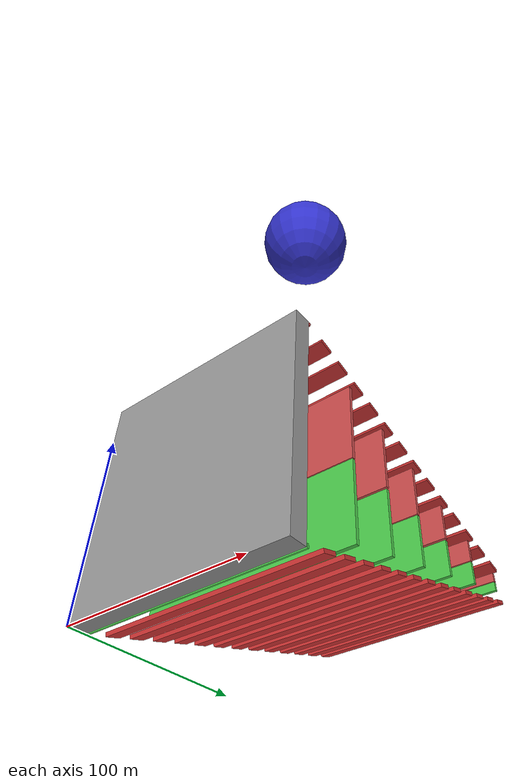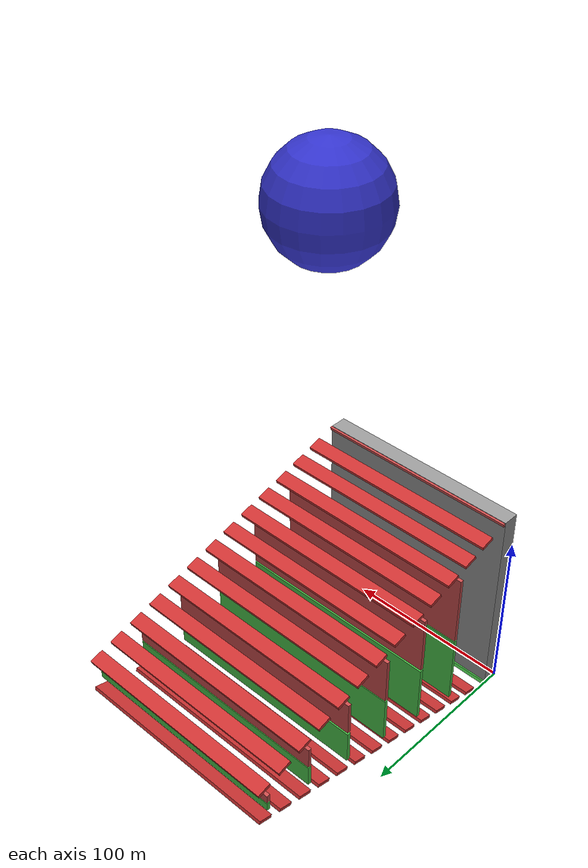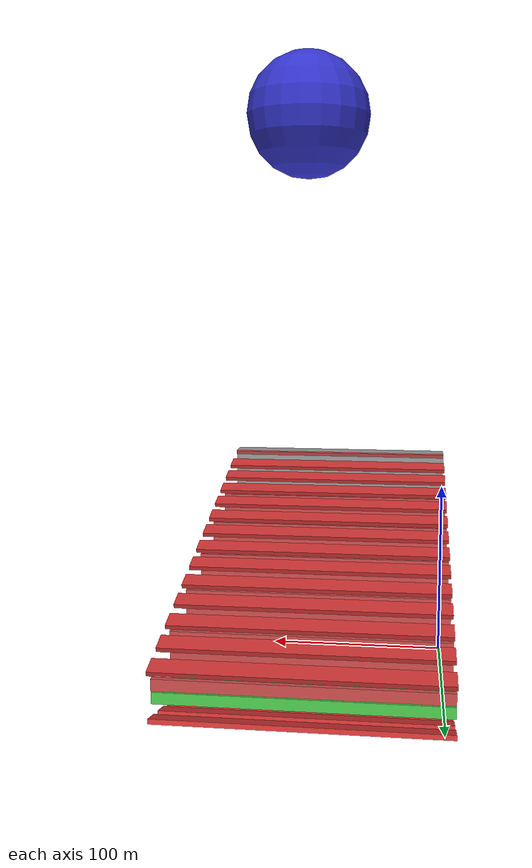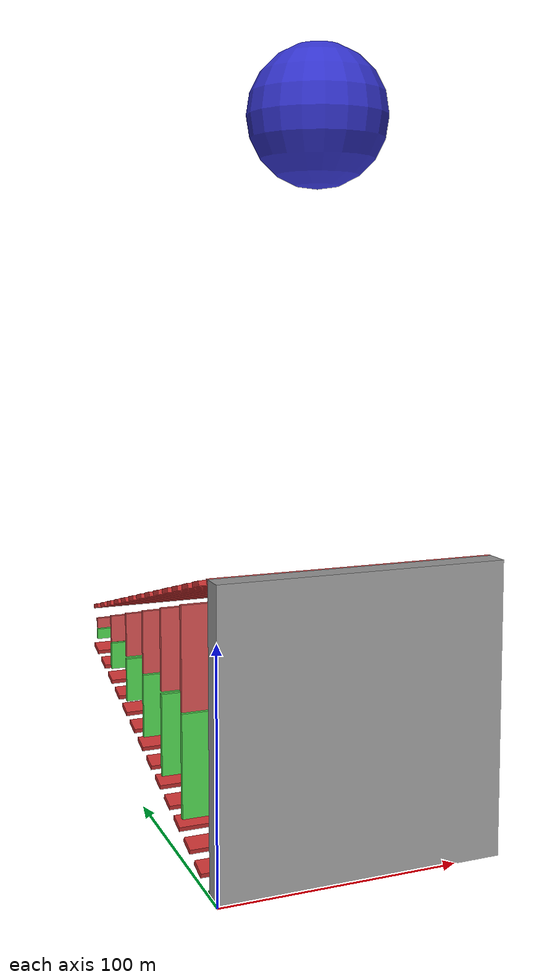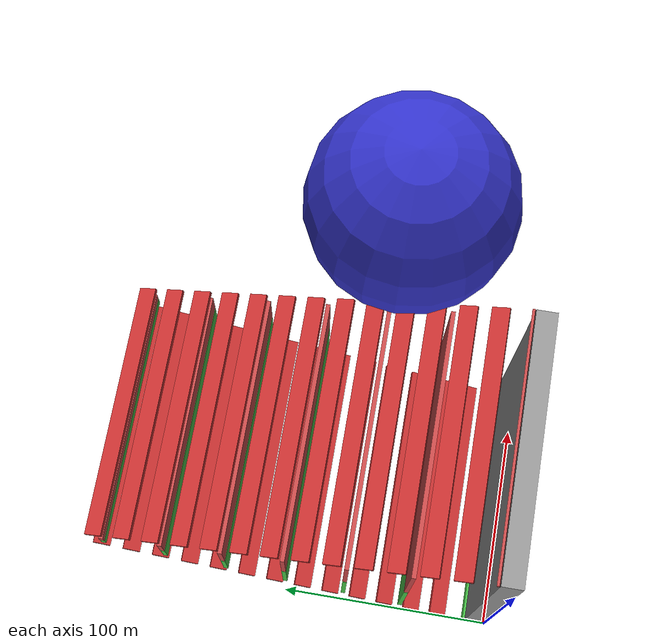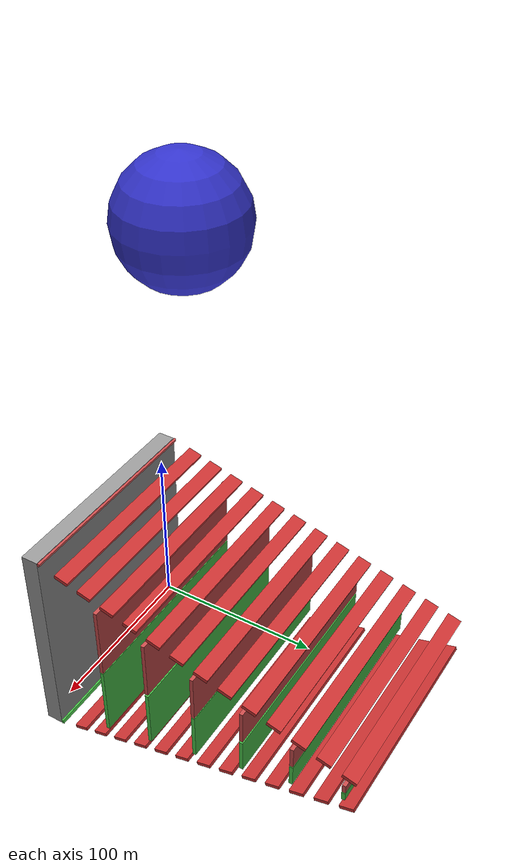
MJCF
<?xml version="1.0" ?>
<mujoco>
  <worldbody>
    <body name="falling_ball" pos="70 70 300">
      <geom density="500" rgba="0.2 0.2 0.8 1" size="30" type="sphere"/>
      <joint name="ball_joint" type="free"/>
    </body>
    <body name="base_box" pos="60 4.77 60.877">
      <geom density="1" rgba="0.6 0.6 0.6 1" size="60 4.77 60.877" type="box"/>
      <body euler="-15.642 0 0" name="small_box_1" pos="0 5.6 60">
        <geom rgba="0.8 0.3 0.3 1" size="60 0.6 1" type="box"/>
        <joint axis="1 0 0" damping="50000" name="joint_0" pos="0 0 0" range="-90 90" springref="0" stiffness="50000" type="hinge"/>
        <body name="blockl_0" pos="0 14 0">
          <geom density="5000" rgba="0.8 0.2 0.2 1" size="60 4 1" type="box"/>
          <site name="sitel_0" pos="0 0 0" size="0.1"/>
          <joint actuatorfrclimited="false" axis="1 0 0" damping="50000" name="jointl_0" pos="0 0 0" range="-180 180" springref="0" stiffness="50000" type="hinge"/>
          <body name="blockl_1" pos="0 14 0">
            <geom density="5000" rgba="0.8 0.2 0.2 1" size="60 4 1" type="box"/>
            <site name="sitel_1" pos="0 0 0" size="0.1"/>
            <joint actuatorfrclimited="false" axis="1 0 0" damping="50000" name="jointl_1" pos="0 0 0" range="-180 180" springref="0" stiffness="50000" type="hinge"/>
            <body name="blockl_2" pos="0 14 0">
              <geom density="5000" rgba="0.8 0.2 0.2 1" size="60 4 1" type="box"/>
              <site name="sitel_2" pos="0 0 0" size="0.1"/>
              <joint actuatorfrclimited="false" axis="1 0 0" damping="50000" name="jointl_2" pos="0 0 0" range="-180 180" springref="0" stiffness="50000" type="hinge"/>
              <body euler="15.642 0 0" name="lbox_2" pos="0 0 -27.7">
                <geom density="5000" rgba="0.8 0.3 0.3 1" size="60 1 21.7" type="box"/>
                <joint axis="1 0 0" damping="50000" name="joint_2" pos="0 0 0" range="-180 180" springref="0" stiffness="50000" type="hinge"/>
              </body>
              <body name="blockl_3" pos="0 14 0">
                <geom density="5000" rgba="0.8 0.2 0.2 1" size="60 4 1" type="box"/>
                <site name="sitel_3" pos="0 0 0" size="0.1"/>
                <joint actuatorfrclimited="false" axis="1 0 0" damping="50000" name="jointl_3" pos="0 0 0" range="-180 180" springref="0" stiffness="50000" type="hinge"/>
                <body name="blockl_4" pos="0 14 0">
                  <geom density="5000" rgba="0.8 0.2 0.2 1" size="60 4 1" type="box"/>
                  <site name="sitel_4" pos="0 0 0" size="0.1"/>
                  <joint actuatorfrclimited="false" axis="1 0 0" damping="50000" name="jointl_4" pos="0 0 0" range="-180 180" springref="0" stiffness="50000" type="hinge"/>
                  <body euler="15.642 0 0" name="lbox_4" pos="0 0 -23.7">
                    <geom density="5000" rgba="0.8 0.3 0.3 1" size="60 1 17.7" type="box"/>
                    <joint axis="1 0 0" damping="50000" name="joint_4" pos="0 0 0" range="-180 180" springref="0" stiffness="50000" type="hinge"/>
                  </body>
                  <body name="blockl_5" pos="0 14 0">
                    <geom density="5000" rgba="0.8 0.2 0.2 1" size="60 4 1" type="box"/>
                    <site name="sitel_5" pos="0 0 0" size="0.1"/>
                    <joint actuatorfrclimited="false" axis="1 0 0" damping="50000" name="jointl_5" pos="0 0 0" range="-180 180" springref="0" stiffness="50000" type="hinge"/>
                    <body name="blockl_6" pos="0 14 0">
                      <geom density="5000" rgba="0.8 0.2 0.2 1" size="60 4 1" type="box"/>
                      <site name="sitel_6" pos="0 0 0" size="0.1"/>
                      <joint actuatorfrclimited="false" axis="1 0 0" damping="50000" name="jointl_6" pos="0 0 0" range="-180 180" springref="0" stiffness="50000" type="hinge"/>
                      <body euler="15.642 0 0" name="lbox_6" pos="0 0 -20">
                        <geom density="5000" rgba="0.8 0.3 0.3 1" size="60 1 14" type="box"/>
                        <joint axis="1 0 0" damping="50000" name="joint_6" pos="0 0 0" range="-180 180" springref="0" stiffness="50000" type="hinge"/>
                      </body>
                      <body name="blockl_7" pos="0 14 0">
                        <geom density="5000" rgba="0.8 0.2 0.2 1" size="60 4 1" type="box"/>
                        <site name="sitel_7" pos="0 0 0" size="0.1"/>
                        <joint actuatorfrclimited="false" axis="1 0 0" damping="50000" name="jointl_7" pos="0 0 0" range="-180 180" springref="0" stiffness="50000" type="hinge"/>
                        <body name="blockl_8" pos="0 14 0">
                          <geom density="5000" rgba="0.8 0.2 0.2 1" size="60 4 1" type="box"/>
                          <site name="sitel_8" pos="0 0 0" size="0.1"/>
                          <joint actuatorfrclimited="false" axis="1 0 0" damping="50000" name="jointl_8" pos="0 0 0" range="-180 180" springref="0" stiffness="50000" type="hinge"/>
                          <body euler="15.642 0 0" name="lbox_8" pos="0 0 -16">
                            <geom density="5000" rgba="0.8 0.3 0.3 1" size="60 1 10" type="box"/>
                            <joint axis="1 0 0" damping="50000" name="joint_8" pos="0 0 0" range="-180 180" springref="0" stiffness="50000" type="hinge"/>
                          </body>
                          <body name="blockl_9" pos="0 14 0">
                            <geom density="5000" rgba="0.8 0.2 0.2 1" size="60 4 1" type="box"/>
                            <site name="sitel_9" pos="0 0 0" size="0.1"/>
                            <joint actuatorfrclimited="false" axis="1 0 0" damping="50000" name="jointl_9" pos="0 0 0" range="-180 180" springref="0" stiffness="50000" type="hinge"/>
                            <body name="blockl_10" pos="0 14 0">
                              <geom density="5000" rgba="0.8 0.2 0.2 1" size="60 4 1" type="box"/>
                              <site name="sitel_10" pos="0 0 0" size="0.1"/>
                              <joint actuatorfrclimited="false" axis="1 0 0" damping="50000" name="jointl_10" pos="0 0 0" range="-180 180" springref="0" stiffness="50000" type="hinge"/>
                              <body euler="15.642 0 0" name="lbox_10" pos="0 0 -12.3">
                                <geom density="5000" rgba="0.8 0.3 0.3 1" size="60 1 6.3" type="box"/>
                                <joint axis="1 0 0" damping="50000" name="joint_10" pos="0 0 0" range="-180 180" springref="0" stiffness="50000" type="hinge"/>
                              </body>
                              <body name="blockl_11" pos="0 14 0">
                                <geom density="5000" rgba="0.8 0.2 0.2 1" size="60 4 1" type="box"/>
                                <site name="sitel_11" pos="0 0 0" size="0.1"/>
                                <joint actuatorfrclimited="false" axis="1 0 0" damping="50000" name="jointl_11" pos="0 0 0" range="-180 180" springref="0" stiffness="50000" type="hinge"/>
                                <body name="blockl_12" pos="0 14 0">
                                  <geom density="5000" rgba="0.8 0.2 0.2 1" size="60 4 1" type="box"/>
                                  <site name="sitel_12" pos="0 0 0" size="0.1"/>
                                  <joint actuatorfrclimited="false" axis="1 0 0" damping="50000" name="jointl_12" pos="0 0 0" range="-180 180" springref="0" stiffness="50000" type="hinge"/>
                                  <body euler="15.642 0 0" name="lbox_12" pos="0 0 -8.5">
                                    <geom density="5000" rgba="0.8 0.3 0.3 1" size="60 1 2.5" type="box"/>
                                    <joint axis="1 0 0" damping="50000" name="joint_12" pos="0 0 0" range="-180 180" springref="0" stiffness="50000" type="hinge"/>
                                  </body>
                                </body>
                              </body>
                            </body>
                          </body>
                        </body>
                      </body>
                    </body>
                  </body>
                </body>
              </body>
            </body>
          </body>
        </body>
      </body>
      <body euler="15.642 0 0" name="small_box_2" pos="0 5.6 -60">
        <geom rgba="0.3 0.8 0.3 1" size="60 0.6 1" type="box"/>
        <joint axis="1 0 0" damping="50000" name="joint_1" pos="0 0 0" range="-90 90" springref="0" stiffness="50000" type="hinge"/>
        <body name="blockr_0" pos="0 14 0">
          <geom density="5000" rgba="0.8 0.2 0.2 1" size="60 4 1" type="box"/>
          <site name="siter_0" pos="0 0 0" size="0.1"/>
          <joint actuatorfrclimited="false" axis="1 0 0" damping="50000" name="jointr_0" pos="0 0 0" range="-180 180" springref="0" stiffness="50000" type="hinge"/>
          <body name="blockr_1" pos="0 14 0">
            <geom density="5000" rgba="0.8 0.2 0.2 1" size="60 4 1" type="box"/>
            <site name="siter_1" pos="0 0 0" size="0.1"/>
            <joint actuatorfrclimited="false" axis="1 0 0" damping="50000" name="jointr_1" pos="0 0 0" range="-180 180" springref="0" stiffness="50000" type="hinge"/>
            <body name="blockr_2" pos="0 14 0">
              <geom density="5000" rgba="0.8 0.2 0.2 1" size="60 4 1" type="box"/>
              <site name="siter_2" pos="0 0 0" size="0.1"/>
              <joint actuatorfrclimited="false" axis="1 0 0" damping="50000" name="jointr_2" pos="0 0 0" range="-180 180" springref="0" stiffness="50000" type="hinge"/>
              <body euler="-15.642 0 0" name="rbox_3" pos="0 0 27.7">
                <geom density="5000" rgba="0.3 0.8 0.3 1" size="60 1 21.7" type="box"/>
                <joint axis="1 0 0" damping="50000" name="joint_3" pos="0 0 0" range="-180 180" springref="0" stiffness="50000" type="hinge"/>
              </body>
              <body name="blockr_3" pos="0 14 0">
                <geom density="5000" rgba="0.8 0.2 0.2 1" size="60 4 1" type="box"/>
                <site name="siter_3" pos="0 0 0" size="0.1"/>
                <joint actuatorfrclimited="false" axis="1 0 0" damping="50000" name="jointr_3" pos="0 0 0" range="-180 180" springref="0" stiffness="50000" type="hinge"/>
                <body name="blockr_4" pos="0 14 0">
                  <geom density="5000" rgba="0.8 0.2 0.2 1" size="60 4 1" type="box"/>
                  <site name="siter_4" pos="0 0 0" size="0.1"/>
                  <joint actuatorfrclimited="false" axis="1 0 0" damping="50000" name="jointr_4" pos="0 0 0" range="-180 180" springref="0" stiffness="50000" type="hinge"/>
                  <body euler="-15.642 0 0" name="rbox_5" pos="0 0 23.7">
                    <geom density="5000" rgba="0.3 0.8 0.3 1" size="60 1 17.7" type="box"/>
                    <joint axis="1 0 0" damping="50000" name="joint_5" pos="0 0 0" range="-180 180" springref="0" stiffness="50000" type="hinge"/>
                  </body>
                  <body name="blockr_5" pos="0 14 0">
                    <geom density="5000" rgba="0.8 0.2 0.2 1" size="60 4 1" type="box"/>
                    <site name="siter_5" pos="0 0 0" size="0.1"/>
                    <joint actuatorfrclimited="false" axis="1 0 0" damping="50000" name="jointr_5" pos="0 0 0" range="-180 180" springref="0" stiffness="50000" type="hinge"/>
                    <body name="blockr_6" pos="0 14 0">
                      <geom density="5000" rgba="0.8 0.2 0.2 1" size="60 4 1" type="box"/>
                      <site name="siter_6" pos="0 0 0" size="0.1"/>
                      <joint actuatorfrclimited="false" axis="1 0 0" damping="50000" name="jointr_6" pos="0 0 0" range="-180 180" springref="0" stiffness="50000" type="hinge"/>
                      <body euler="-15.642 0 0" name="rbox_7" pos="0 0 20">
                        <geom density="5000" rgba="0.3 0.8 0.3 1" size="60 1 14" type="box"/>
                        <joint axis="1 0 0" damping="50000" name="joint_7" pos="0 0 0" range="-180 180" springref="0" stiffness="50000" type="hinge"/>
                      </body>
                      <body name="blockr_7" pos="0 14 0">
                        <geom density="5000" rgba="0.8 0.2 0.2 1" size="60 4 1" type="box"/>
                        <site name="siter_7" pos="0 0 0" size="0.1"/>
                        <joint actuatorfrclimited="false" axis="1 0 0" damping="50000" name="jointr_7" pos="0 0 0" range="-180 180" springref="0" stiffness="50000" type="hinge"/>
                        <body name="blockr_8" pos="0 14 0">
                          <geom density="5000" rgba="0.8 0.2 0.2 1" size="60 4 1" type="box"/>
                          <site name="siter_8" pos="0 0 0" size="0.1"/>
                          <joint actuatorfrclimited="false" axis="1 0 0" damping="50000" name="jointr_8" pos="0 0 0" range="-180 180" springref="0" stiffness="50000" type="hinge"/>
                          <body euler="-15.642 0 0" name="rbox_9" pos="0 0 16">
                            <geom density="5000" rgba="0.3 0.8 0.3 1" size="60 1 10" type="box"/>
                            <joint axis="1 0 0" damping="50000" name="joint_9" pos="0 0 0" range="-180 180" springref="0" stiffness="50000" type="hinge"/>
                          </body>
                          <body name="blockr_9" pos="0 14 0">
                            <geom density="5000" rgba="0.8 0.2 0.2 1" size="60 4 1" type="box"/>
                            <site name="siter_9" pos="0 0 0" size="0.1"/>
                            <joint actuatorfrclimited="false" axis="1 0 0" damping="50000" name="jointr_9" pos="0 0 0" range="-180 180" springref="0" stiffness="50000" type="hinge"/>
                            <body name="blockr_10" pos="0 14 0">
                              <geom density="5000" rgba="0.8 0.2 0.2 1" size="60 4 1" type="box"/>
                              <site name="siter_10" pos="0 0 0" size="0.1"/>
                              <joint actuatorfrclimited="false" axis="1 0 0" damping="50000" name="jointr_10" pos="0 0 0" range="-180 180" springref="0" stiffness="50000" type="hinge"/>
                              <body euler="-15.642 0 0" name="rbox_11" pos="0 0 12.3">
                                <geom density="5000" rgba="0.3 0.8 0.3 1" size="60 1 6.3" type="box"/>
                                <joint axis="1 0 0" damping="50000" name="joint_11" pos="0 0 0" range="-180 180" springref="0" stiffness="50000" type="hinge"/>
                              </body>
                              <body name="blockr_11" pos="0 14 0">
                                <geom density="5000" rgba="0.8 0.2 0.2 1" size="60 4 1" type="box"/>
                                <site name="siter_11" pos="0 0 0" size="0.1"/>
                                <joint actuatorfrclimited="false" axis="1 0 0" damping="50000" name="jointr_11" pos="0 0 0" range="-180 180" springref="0" stiffness="50000" type="hinge"/>
                                <body name="blockr_12" pos="0 14 0">
                                  <geom density="5000" rgba="0.8 0.2 0.2 1" size="60 4 1" type="box"/>
                                  <site name="siter_12" pos="0 0 0" size="0.1"/>
                                  <joint actuatorfrclimited="false" axis="1 0 0" damping="50000" name="jointr_12" pos="0 0 0" range="-180 180" springref="0" stiffness="50000" type="hinge"/>
                                  <body euler="-15.642 0 0" name="rbox_13" pos="0 0 8.5">
                                    <geom density="5000" rgba="0.3 0.8 0.3 1" size="60 1 2.5" type="box"/>
                                    <joint axis="1 0 0" damping="50000" name="joint_13" pos="0 0 0" range="-180 180" springref="0" stiffness="50000" type="hinge"/>
                                  </body>
                                </body>
                              </body>
                            </body>
                          </body>
                        </body>
                      </body>
                    </body>
                  </body>
                </body>
              </body>
            </body>
          </body>
        </body>
      </body>
    </body>
  </worldbody>
  <option integrator="implicitfast"/>
  <equality>
    <weld active="true" body1="lbox_2" body2="rbox_3" solimp="0.9 0.95 0.001" solref="0.02 1"/>
  </equality>
  <equality>
    <weld active="true" body1="lbox_4" body2="rbox_5" solimp="0.9 0.95 0.001" solref="0.02 1"/>
  </equality>
  <equality>
    <weld active="true" body1="lbox_6" body2="rbox_7" solimp="0.9 0.95 0.001" solref="0.02 1"/>
  </equality>
  <equality>
    <weld active="true" body1="lbox_8" body2="rbox_9" solimp="0.9 0.95 0.001" solref="0.02 1"/>
  </equality>
  <equality>
    <weld active="true" body1="lbox_10" body2="rbox_11" solimp="0.9 0.95 0.001" solref="0.02 1"/>
  </equality>
  <equality>
    <weld active="true" body1="lbox_12" body2="rbox_13" solimp="0.9 0.95 0.001" solref="0.02 1"/>
  </equality>
  <actuator>
    <position ctrlrange="-1 1" gear="100" joint="joint_0" kp="9999999" kv="4000"/>
    <position ctrlrange="-1 1" gear="100" joint="joint_1" kp="9999999" kv="4000"/>
    <position ctrlrange="-1 1" gear="100" joint="joint_2" kp="9999999" kv="4000"/>
    <position ctrlrange="-1 1" gear="100" joint="joint_3" kp="9999999" kv="4000"/>
    <position ctrlrange="-1 1" gear="100" joint="joint_4" kp="9999999" kv="4000"/>
    <position ctrlrange="-1 1" gear="100" joint="joint_5" kp="9999999" kv="4000"/>
    <position ctrlrange="-1 1" gear="100" joint="joint_6" kp="9999999" kv="4000"/>
    <position ctrlrange="-1 1" gear="100" joint="joint_7" kp="9999999" kv="4000"/>
    <position ctrlrange="-1 1" gear="100" joint="joint_8" kp="9999999" kv="4000"/>
    <position ctrlrange="-1 1" gear="100" joint="joint_9" kp="9999999" kv="4000"/>
    <position ctrlrange="-1 1" gear="100" joint="joint_10" kp="9999999" kv="4000"/>
    <position ctrlrange="-1 1" gear="100" joint="joint_11" kp="9999999" kv="4000"/>
    <position ctrlrange="-1 1" gear="100" joint="joint_12" kp="9999999" kv="4000"/>
    <position ctrlrange="-1 1" gear="100" joint="joint_13" kp="9999999" kv="4000"/>
  </actuator>
  <tendon>
    <spatial damping="20" name="tendon_finger_right" stiffness="3000"/>
    <spatial damping="20" name="tendon_finger_left" stiffness="3000">
      <site name="sitel_0"/>
      <site name="sitel_1"/>
      <site name="sitel_2"/>
      <site name="sitel_3"/>
      <site name="sitel_4"/>
      <site name="sitel_5"/>
      <site name="sitel_6"/>
      <site name="sitel_7"/>
      <site name="sitel_8"/>
      <site name="sitel_9"/>
      <site name="sitel_10"/>
      <site name="sitel_11"/>
      <site name="sitel_12"/>
      <site name="siter_0"/>
      <site name="siter_1"/>
      <site name="siter_2"/>
      <site name="siter_3"/>
      <site name="siter_4"/>
      <site name="siter_5"/>
      <site name="siter_6"/>
      <site name="siter_7"/>
      <site name="siter_8"/>
      <site name="siter_9"/>
      <site name="siter_10"/>
      <site name="siter_11"/>
      <site name="siter_12"/>
    </spatial>
  </tendon>
</mujoco>
